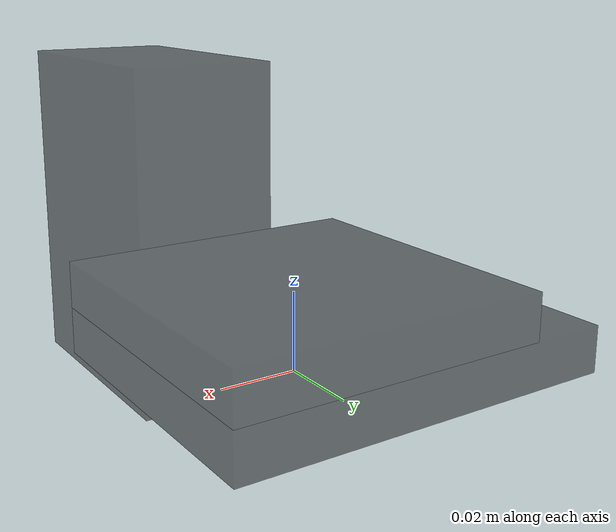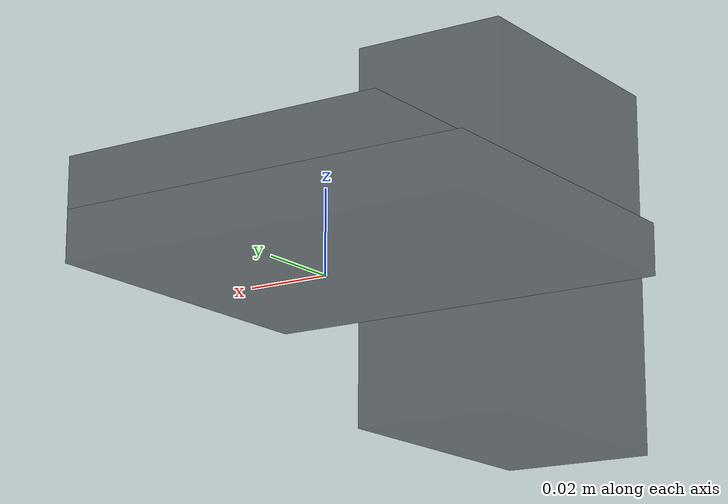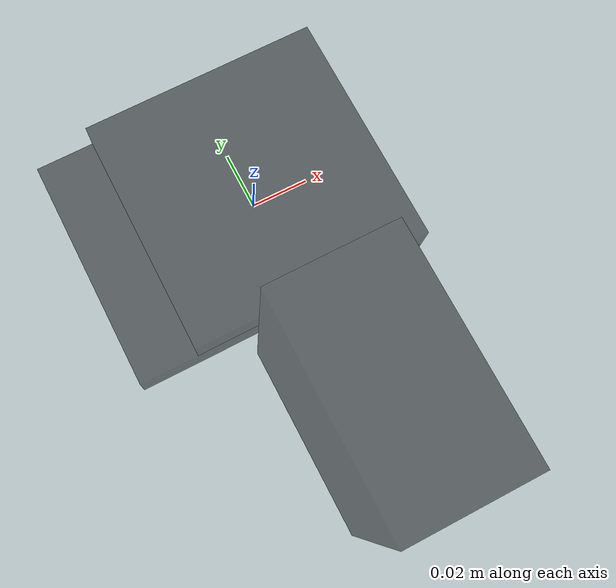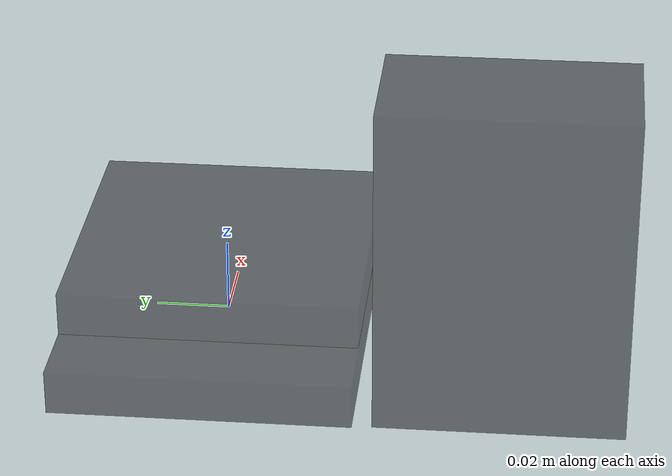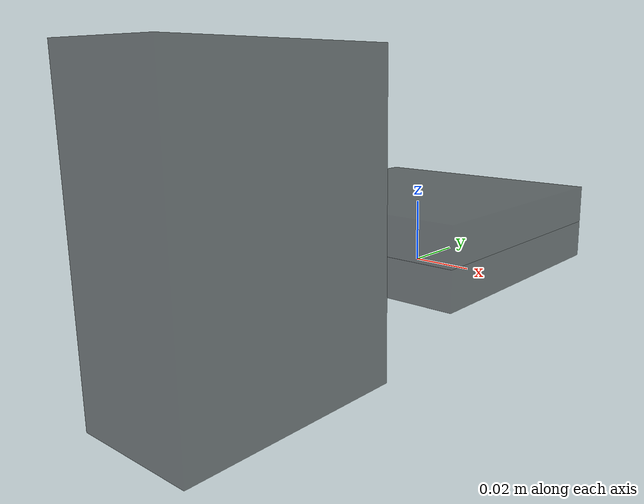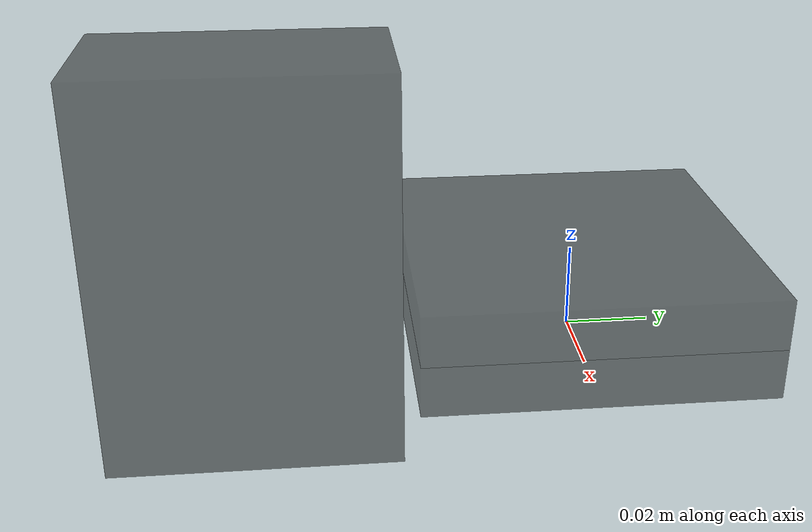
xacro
<?xml version="1.0"?>
<robot name='adapter' xmlns:xacro="http://www.ros.org/wiki/xacro">
    <link name="adapter_link">
        <!-- 构建底板一 -->
        <visual>
            <origin xyz='-0.01 0.0 0.006' rpy='0.0 0.0 0.0'/>
            <geometry>
                <box size="0.1 0.08 0.012"/>
            </geometry>
            <material name='black'>
                <color rgba='0.0 0.0 0.0 0.5'/>
            </material>
        </visual>
        <collision>
            <origin xyz='-0.01 0.0 0.006' rpy='0.0 0.0 0.0'/>
            <geometry>
                <box size="0.1 0.08 0.012"/>
            </geometry>
        </collision>

        <!-- 构建底板二 -->
        <visual>
            <origin xyz='0.0 0.0 0.018' rpy='0.0 0.0 0.0'/>
            <geometry>
                <box size="0.08 0.08 0.012"/>
            </geometry>
            <material name='black'>
                <color rgba='0.0 0.0 0.0 0.5'/>
            </material>
        </visual>
        <collision>
            <origin xyz='0.0 0.0 0.018' rpy='0.0 0.0 0.0'/>
            <geometry>
                <box size="0.08 0.08 0.012"/>
            </geometry>
        </collision>

        <!-- 构建夹具线区域 -->
        <visual>
            <origin xyz='0.0 -0.077 0.0225' rpy='0.0 0.0 0.0'/>
            <geometry>
                <box size="0.04 0.07 0.095"/>
            </geometry>
            <material name='black'>
                <color rgba='0.0 0.0 0.0 0.5'/>
            </material>
        </visual>
        <collision>
            <origin xyz='0.0 -0.077 0.0225' rpy='0.0 0.0 0.0'/>
            <geometry>
                <box size="0.04 0.07 0.095"/>
            </geometry>
        </collision>
    </link>

</robot>
